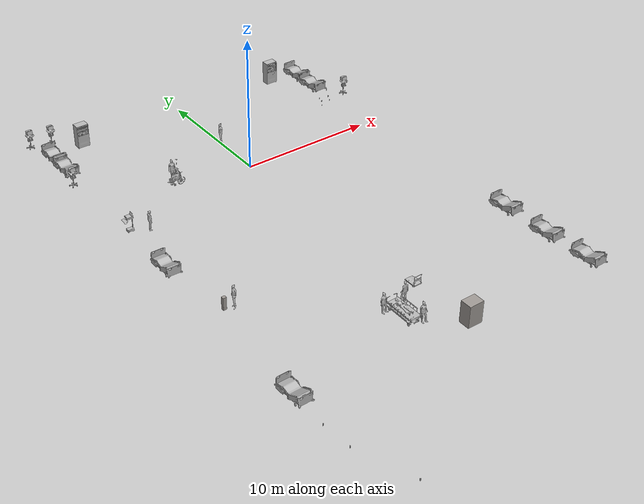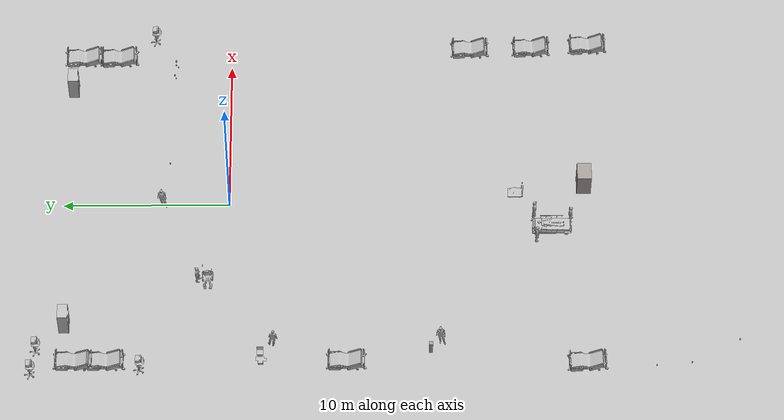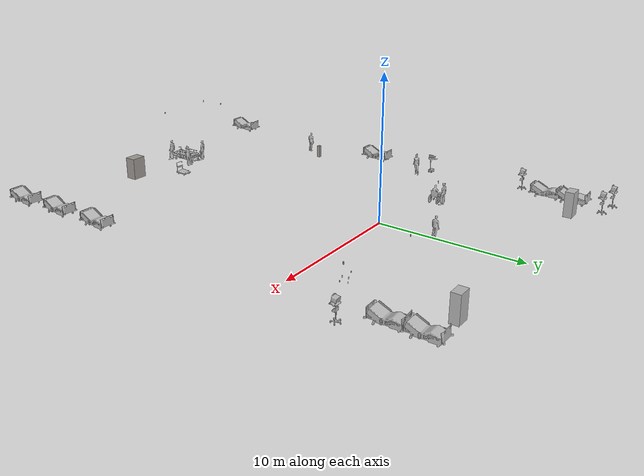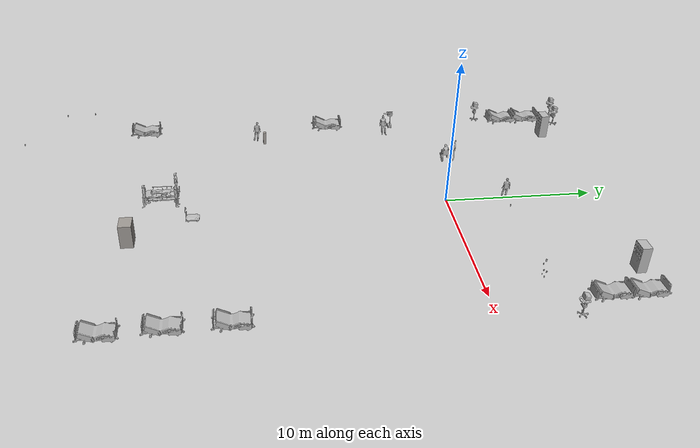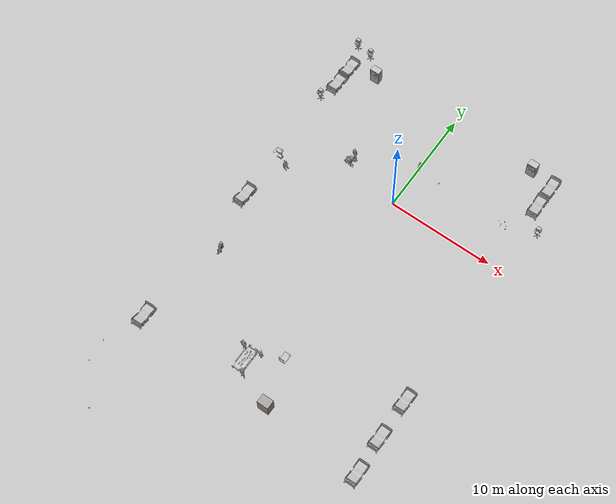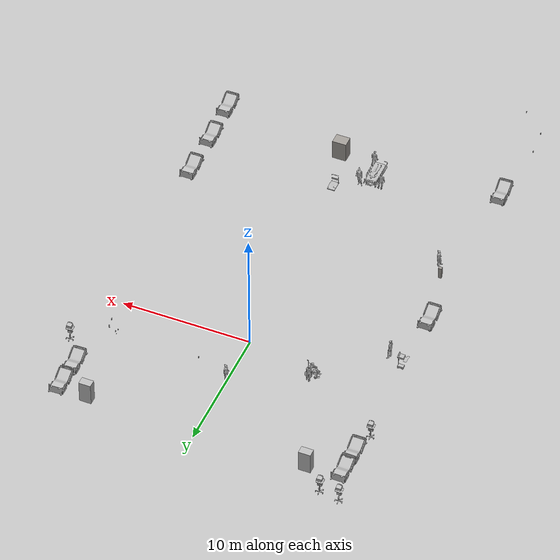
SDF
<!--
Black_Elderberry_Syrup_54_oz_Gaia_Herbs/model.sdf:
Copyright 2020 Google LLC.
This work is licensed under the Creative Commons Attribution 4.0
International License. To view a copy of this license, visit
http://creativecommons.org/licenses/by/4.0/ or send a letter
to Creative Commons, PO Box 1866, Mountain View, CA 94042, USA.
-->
<sdf version="1.6">
 <world name="world">
  <gravity>0 0 -9.8</gravity>
  <physics default="0" name="default_physics" type="ode">
   <ode><solver><iters>400</iters></solver><constraints><cfm>0.00005</cfm><erp>0.2</erp></constraints></ode>
   <max_step_size>0.005</max_step_size>
   <real_time_factor>1</real_time_factor>
   <real_time_update_rate>1000</real_time_update_rate>
  </physics>
  <scene><ambient>0.6 0.6 0.6 1</ambient><background>0.4 0.4 0.4 1</background><shadows>false</shadows></scene>
  <model name="CGMClassic_1">
   <include><uri>model://CGMClassic</uri><static>true</static></include>
   <pose>11.1777 -18.4129 0 0 0 -3.13719</pose>
  </model>
  <model name="CGMClassic_2">
   <include><uri>model://CGMClassic</uri><static>true</static></include>
   <pose>11.1179 -14.6493 0 0 0 -3.13599</pose>
  </model>
  <model name="Scrubs_1">
   <include><uri>model://Scrubs</uri><static>true</static></include>
   <pose>-9.61916 -12.5112 0 0 0 -3.12353</pose>
  </model>
  <model name="Scrubs_2">
   <include><uri>model://Scrubs</uri><static>true</static></include>
   <pose>0.054597 4.05849 0 0 -0 3.12413</pose>
  </model>
  <model name="PatientWheelChair_1">
   <include><uri>model://PatientWheelChair</uri><static>true</static></include>
   <pose>-5.46091 1.23577 0 0 0 -1.54828</pose>
  </model>
  <model name="Scrubs_3">
   <include><uri>model://Scrubs</uri><static>true</static></include>
   <pose>-5.38513 1.82526 0 0 0 -1.63757</pose>
  </model>
  <model name="CGMClassic_3">
   <include><uri>model://CGMClassic</uri><static>true</static></include>
   <pose>-11.2304 -21.1134 0 0 0 -3.11834</pose>
  </model>
  <model name="CGMClassic_4">
   <include><uri>model://CGMClassic</uri><static>true</static></include>
   <pose>-11.0878 -7.00992 0 0 -0 3.1351</pose>
  </model>
  <model name="CGMClassic_5">
   <include><uri>model://CGMClassic</uri><static>true</static></include>
   <pose>-11.0106 8.9505 -0.008203 -0.035019 -0.000392 3.13388</pose>
  </model>
  <model name="CGMClassic_6">
   <include><uri>model://CGMClassic</uri><static>true</static></include>
   <pose>-11.025 7.10335 0 -0.035021 1.8e-05 -3.13762</pose>
  </model>
  <model name="TrolleyBedPatient_1">
   <include><uri>model://TrolleyBedPatient</uri><static>true</static></include>
   <pose>-1.83202 -19.2612 0 0 -0 0</pose>
  </model>
  <model name="Scrubs_4">
   <include><uri>model://Scrubs</uri><static>true</static></include>
   <pose>-0.93616 -18.2252 0 0 -0 1.62572</pose>
  </model>
  <model name="Scrubs_5">
   <include><uri>model://Scrubs</uri><static>true</static></include>
   <pose>-2.66657 -18.3733 0 -0.002221 -0.006608 -1.24025</pose>
  </model>
  <model name="CGMClassic_7">
   <include><uri>model://CGMClassic</uri><static>true</static></include>
   <pose>10.6166 9.06291 -0.008203 -0.03501 0.000885 -3.11285</pose>
  </model>
  <model name="CGMClassic_8">
   <include><uri>model://CGMClassic</uri><static>true</static></include>
   <pose>10.6006 6.90956 -0.008203 -0.035003 0.001133 -3.10576</pose>
  </model>
  <model name="ParkingTrolleyMin_1">
   <include><uri>model://ParkingTrolleyMin</uri><static>true</static></include>
   <pose>0.715846 -17.1496 -0.000121 -1e-06 -0 0</pose>
  </model>
  <model name="Scrubs_6">
   <include><uri>model://Scrubs</uri><static>true</static></include>
   <pose>-1.29468 -20.4093 0 0 0 -1.51066</pose>
  </model>
  <model name="CGMClassic_9">
   <include><uri>model://CGMClassic</uri><static>true</static></include>
   <pose>11.3613 -21.8867 0 0 0 -3.12292</pose>
  </model>
  <model name="XRayMachine_1">
   <include><uri>model://XRayMachine</uri><static>true</static></include>
   <pose>1.79424 -21.3329 0 0 -0 0</pose>
  </model>
  <model name="BloodPressureMonitor_1">
   <include><uri>model://BloodPressureMonitor</uri><static>true</static></include>
   <pose>-9.96258 -11.9361 0 0 -0 0</pose>
  </model>
  <model name="BMWCart_1">
   <include><uri>model://BMWCart</uri><static>true</static></include>
   <pose>-10.931 -1.9483 0 0 -0 0</pose>
  </model>
  <model name="Scrubs_7">
   <include><uri>model://Scrubs</uri><static>true</static></include>
   <pose>-9.75875 -2.67552 0 0 -0 0</pose>
  </model>
  <model name="BPCart_1">
   <include><uri>model://BPCart</uri><static>true</static></include>
   <pose>-10.1788 11.173 0.003446 1e-06 -0 0.003096</pose>
  </model>
  <model name="BPCart_2">
   <include><uri>model://BPCart</uri><static>true</static></include>
   <pose>12.0072 4.64765 0 0 -0 0</pose>
  </model>
  <model name="BPCart_3">
   <include><uri>model://BPCart</uri><static>true</static></include>
   <pose>-11.7236 11.4294 0 0 -0 0</pose>
  </model>
  <model name="BPCart_4">
   <include><uri>model://BPCart</uri><static>true</static></include>
   <pose>-11.4703 5.05999 0.003446 1e-06 -0 0.003096</pose>
  </model>
  <model name="VendingMachine_1">
   <include><uri>model://VendingMachine</uri><static>true</static></include>
   <pose>-8.45694 9.63064 0 0 -0 0</pose>
  </model>
  <model name="VendingMachine_2">
   <include><uri>model://VendingMachine</uri><static>true</static></include>
   <pose>8.35378 9.64852 -3e-06 -6e-06 0 0</pose>
  </model>
  <model name="Coke_1">
   <include><uri>model://Coke</uri><static>false</static></include>
   <pose>2.4 3.6 0.9 0 0 0</pose>
  </model>
  <model name="Coke_2">
   <include><uri>model://Coke</uri><static>false</static></include>
   <pose>-12.02 -27.06 1.5 0 0 0</pose>
  </model>
  <model name="Coke_3">
   <include><uri>model://Coke</uri><static>false</static></include>
   <pose>-12.2 -25.0 1.5 0 0 0</pose>
  </model>
  <model name="Syrup_1">
   <include><uri>model://Black_Elderberry_Syrup_54_oz_Gaia_Herbs</uri><static>false</static></include>
   <pose>-9.79 -30.06 0.33 0 0 0</pose>
  </model>
  <model name="Drugs_1"><include><uri>model://Inositol</uri></include><pose>8.97 3.48 0.8 0 0 0</pose></model>
  <model name="Drugs_2"><include><uri>model://CoQ10</uri></include><pose>8.95 3.42 0.5 0 0 0</pose></model>
  <model name="Drugs_3"><include><uri>model://Lutein</uri></include><pose>8.75 3.5 1.1 0 0 0</pose></model>
  <model name="Drugs_4">
   <include><uri>model://Ultra_JarroDophilus</uri></include>
   <pose>9.5 3.4 1.1 0 0 -1.1</pose>
  </model>
  <model name="Drugs_5"><include><uri>model://SAMe_200</uri></include><pose>9.3 3.35 1.76 0 0 1.1</pose></model>
  <model name="Drugs_6">
   <include><uri>model://JarroSil_Activated_Silicon</uri></include>
   <pose>9.55 3.28 0.8 0 0 1.2</pose>
  </model>
 </world>
</sdf>

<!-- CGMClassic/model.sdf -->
<sdf version="1.6">
  <model name="CGMClassic">
   <static>true</static>
    <link name="body">
      <pose>0 0 0 0 0 0</pose>

      <visual name="visual">
        <geometry>
          <mesh>
            <uri>model://CGMClassic/meshes/CGMClassic.obj</uri>
            <scale>0.01 0.01 0.01</scale>
          </mesh>
        </geometry>
      </visual>

      <collision name="collision">
        <geometry>
          <mesh>
            <uri>model://CGMClassic/meshes/CGMClassic.obj</uri>
            <scale>0.01 0.01 0.01</scale>
          </mesh>
        </geometry>
      </collision>

    </link>
  </model>
</sdf>

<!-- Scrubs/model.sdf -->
<sdf version="1.6">
  <model name='Scrubs'>
   <static>true</static>
    <link name="body">
      <pose>0 0 0 0 0 0</pose>

      <visual name="visual">
        <geometry>
          <mesh>
            <uri>model://Scrubs/meshes/scrubs.obj</uri>
          </mesh>
        </geometry>
      </visual>

      <collision name="collision">
        <geometry>
          <mesh>
            <uri>model://Scrubs/meshes/Scrubs_Col.obj</uri>
          </mesh>
        </geometry>
      </collision>

    </link>
  </model>
</sdf>

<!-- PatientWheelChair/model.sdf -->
<sdf version="1.6">
  <model name="PatientWheelChair">
   <static>true</static>
    <link name="body">
      <pose>0 0 0 0 0 0</pose>

      <visual name="visual">
        <geometry>
          <mesh>
            <uri>model://PatientWheelChair/meshes/PatientWheelChair.obj</uri>
          </mesh>
        </geometry>
      </visual>

      <collision name="collision">
        <geometry>
          <mesh>
            <uri>model://PatientWheelChair/meshes/PatientWheelChair_Col.obj</uri>
          </mesh>
        </geometry>
      </collision>

    </link>
  </model>
</sdf>

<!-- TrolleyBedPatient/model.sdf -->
<sdf version="1.6">
  <model name="TrolleyBedPatient">
   <static>true</static>
    <link name="body">
      <pose>0 0 0 0 0 0</pose>

      <visual name="visual">
        <geometry>
          <mesh>
            <uri>model://TrolleyBedPatient/meshes/TrolleyBedPatient.obj</uri>
          </mesh>
        </geometry>
      </visual>

      <collision name="collision">
        <geometry>
          <mesh>
            <uri>model://TrolleyBedPatient/meshes/TrolleyBedPatient.obj</uri>
          </mesh>
        </geometry>
      </collision>

    </link>
  </model>
</sdf>

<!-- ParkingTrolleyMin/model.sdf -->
<sdf version="1.6">
  <model name="ParkingTrolleyMin">
    <link name="body">
      <pose>0 0 0 0 0 0</pose>

        <visual name="visual">
          <pose>0 0 0 0 0 0</pose>
          <geometry>
            <mesh><uri>model://ParkingTrolleyMin/meshes/trolleymin.obj</uri></mesh>
          </geometry>
        </visual>

        <collision name="collision">
          <pose>0 0 0 0 0 0</pose>
          <geometry>
            <mesh><uri>model://ParkingTrolleyMin/meshes/trolleymin.obj</uri></mesh>
          </geometry>
        </collision>

    </link>
  </model>
</sdf>

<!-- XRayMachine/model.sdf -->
<sdf version="1.6">
  <model name="XRayMachine">
    <static>true</static>
    <link name="link">
      <collision name="col">
        <geometry>
          <box>
            <size>1.1 0.85 1.65</size>
          </box>
        </geometry>
      </collision>
      <visual name="vis">
        <geometry>
          <box>
            <size>1.1 0.85 1.65</size>
          </box>
        </geometry>
        <material>
          <ambient>0.62 0.6 0.58 1</ambient>
          <diffuse>0.62 0.6 0.58 1</diffuse>
        </material>
      </visual>
    </link>
  </model>
</sdf>

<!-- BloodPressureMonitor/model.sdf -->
<sdf version="1.6">
  <model name="BloodPressureMonitor">
    <static>true</static>
    <link name="link">
      <collision name="col">
        <geometry>
          <box>
            <size>0.25 0.22 0.95</size>
          </box>
        </geometry>
      </collision>
      <visual name="vis">
        <geometry>
          <box>
            <size>0.25 0.22 0.95</size>
          </box>
        </geometry>
        <material>
          <ambient>0.62 0.6 0.58 1</ambient>
          <diffuse>0.62 0.6 0.58 1</diffuse>
        </material>
      </visual>
    </link>
  </model>
</sdf>

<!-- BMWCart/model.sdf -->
<sdf version="1.6">
  <model name='BMWCart'>
    <link name="body">
      <pose>0 0 0 0 0 0</pose>

      <visual name="visual">
        <geometry>
          <mesh>
            <uri>model://BMWCart/meshes/Cart_BMW.obj</uri>
          </mesh>
        </geometry>
      </visual>

      <collision name="collision">
        <geometry>
          <mesh>
            <uri>model://BMWCart/meshes/Cart_BMW_Col.obj</uri>
          </mesh>
        </geometry>
      </collision>

    </link>
  </model>
</sdf>

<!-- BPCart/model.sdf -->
<sdf version="1.6">
  <model name='BPCart'>
    <link name="body">
      <pose>0 0 0 0 0 0</pose>

      <visual name="visual">
        <geometry>
          <mesh>
            <uri>model://BPCart/meshes/Cart_BP.obj</uri>
          </mesh>
        </geometry>
      </visual>

      <collision name="collision">
        <geometry>
          <mesh>
            <uri>model://BPCart/meshes/Cart_BP_Col.obj</uri>
          </mesh>
        </geometry>
      </collision>

    </link>
  </model>
</sdf>

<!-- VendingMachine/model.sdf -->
<sdf version="1.6">
  <model name="VendingMachine">
    <link name="body">
      <pose>0 0 0 0 0 0</pose>

      <visual name="visual">
        <geometry>
          <mesh>
            <uri>model://VendingMachine/meshes/vend.obj</uri>
          </mesh>
        </geometry>
      </visual>

      <collision name="collision">
        <geometry>
          <mesh>
            <uri>model://VendingMachine/meshes/vend.obj</uri>
          </mesh>
        </geometry>
      </collision>

    </link>
  </model>
</sdf>

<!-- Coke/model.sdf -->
<sdf version="1.6">
  <model name='Coke'>
    <static>true</static>
    <link name="body">
      <pose>0 0 0 0 0 0</pose>

        <visual name="visual">
          <geometry>
            <mesh><uri>model://Coke/meshes/coke.obj</uri></mesh>
          </geometry>
        </visual>

        <collision name="collision">
          <geometry>
            <mesh><uri>model://Coke/meshes/coke.obj</uri></mesh>
          </geometry>
        </collision>

        <!-- TODO: Replace with accurate values of mass and inertia -->
        <inertial>
          <mass>1.0</mass>
          <inertia>
            <ixx>0.003366666666666667</ixx>
            <iyy>0.0008666666666666667</iyy>
            <izz>0.0041666666666666675</izz>
          </inertia>
        </inertial>

    </link>

  </model>
</sdf>

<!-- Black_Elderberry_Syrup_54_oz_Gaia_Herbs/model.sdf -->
<sdf version="1.6">
  <model name="Black_Elderberry_Syrup_54_oz_Gaia_Herbs">
    <link name="link_0">
      <visual name="visual">
        <geometry>
          <mesh>
            <uri>meshes/model.obj</uri>
          </mesh>
        </geometry>
      </visual>
      <collision name="collision_0">
      <surface>
        <contact>
          <ode>
            <kp>2000000.0</kp>
            <kd>5000</kd>
            <max_vel>0.01</max_vel>
            <min_depth>0.001</min_depth>
          </ode>
        </contact>
      </surface>
        <geometry>
          <mesh>
            <uri>meshes/model.obj</uri>
          </mesh>
        </geometry>
      </collision>
      <inertial>
        <mass>0.5</mass>
        <inertia>
          <ixx>0.003366666666666667</ixx>
          <iyy>0.0008666666666666667</iyy>
          <izz>0.0041666666666666675</izz>
        </inertia>
      </inertial>
    </link>
  </model>
</sdf>

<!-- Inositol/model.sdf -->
<sdf version="1.6">
  <model name="Inositol">
    <link name="link_0">
      <visual name="visual">
        <geometry>
          <mesh>
            <uri>meshes/model.obj</uri>
          </mesh>
        </geometry>
      </visual>
      <collision name="collision_0">
        <geometry>
          <mesh>
            <uri>meshes/model.obj</uri>
          </mesh>
        </geometry>
      </collision>
    </link>
  </model>
</sdf>

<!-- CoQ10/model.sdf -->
<sdf version="1.6">
  <model name="CoQ10">
    <link name="link_0">
      <visual name="visual">
        <geometry>
          <mesh>
            <uri>meshes/model.obj</uri>
          </mesh>
        </geometry>
      </visual>
      <collision name="collision_0">
        <geometry>
          <mesh>
            <uri>meshes/model.obj</uri>
          </mesh>
        </geometry>
      </collision>
    </link>
  </model>
</sdf>

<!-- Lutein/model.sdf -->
<sdf version="1.6">
  <model name="Lutein">
    <link name="link_0">
      <visual name="visual">
        <geometry>
          <mesh>
            <uri>meshes/model.obj</uri>
          </mesh>
        </geometry>
      </visual>
      <collision name="collision_0">
        <geometry>
          <mesh>
            <uri>meshes/model.obj</uri>
          </mesh>
        </geometry>
      </collision>
    </link>
  </model>
</sdf>

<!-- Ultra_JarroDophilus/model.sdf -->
<sdf version="1.6">
  <model name="Ultra_JarroDophilus">
    <link name="link_0">
      <visual name="visual">
        <geometry>
          <mesh>
            <uri>meshes/model.obj</uri>
          </mesh>
        </geometry>
      </visual>
      <collision name="collision_0">
        <geometry>
          <mesh>
            <uri>meshes/model.obj</uri>
          </mesh>
        </geometry>
      </collision>
    </link>
  </model>
</sdf>

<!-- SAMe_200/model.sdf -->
<sdf version="1.6">
  <model name="SAMe_200">
    <link name="link_0">
      <visual name="visual">
        <geometry>
          <mesh>
            <uri>meshes/model.obj</uri>
          </mesh>
        </geometry>
      </visual>
      <collision name="collision_0">
        <geometry>
          <mesh>
            <uri>meshes/model.obj</uri>
          </mesh>
        </geometry>
      </collision>
    </link>
  </model>
</sdf>

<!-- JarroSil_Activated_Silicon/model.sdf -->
<sdf version="1.6">
  <model name="JarroSil_Activated_Silicon">
    <link name="link_0">
      <visual name="visual">
        <geometry>
          <mesh>
            <uri>meshes/model.obj</uri>
          </mesh>
        </geometry>
      </visual>
      <collision name="collision_0">
        <geometry>
          <mesh>
            <uri>meshes/model.obj</uri>
          </mesh>
        </geometry>
      </collision>
    </link>
  </model>
</sdf>
